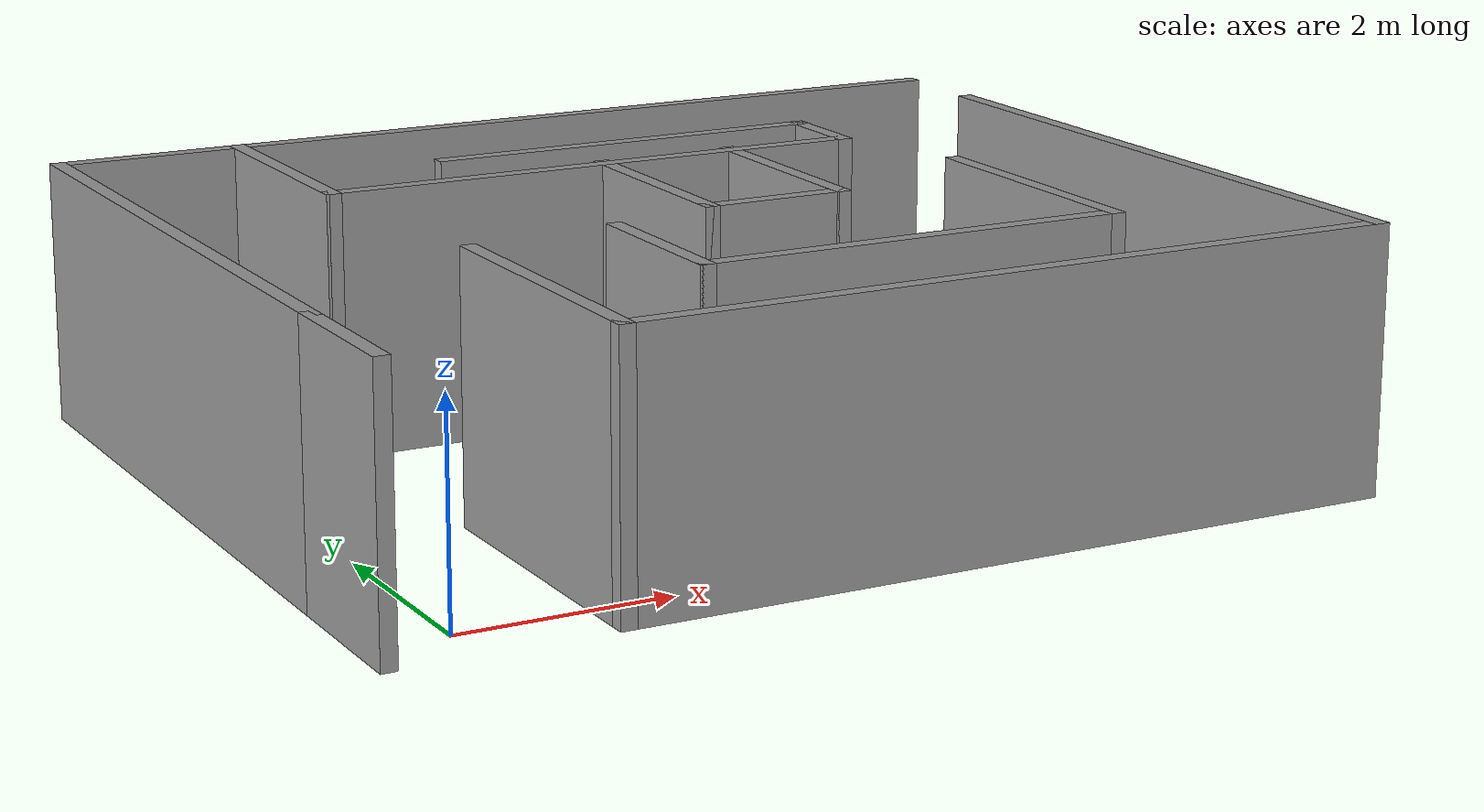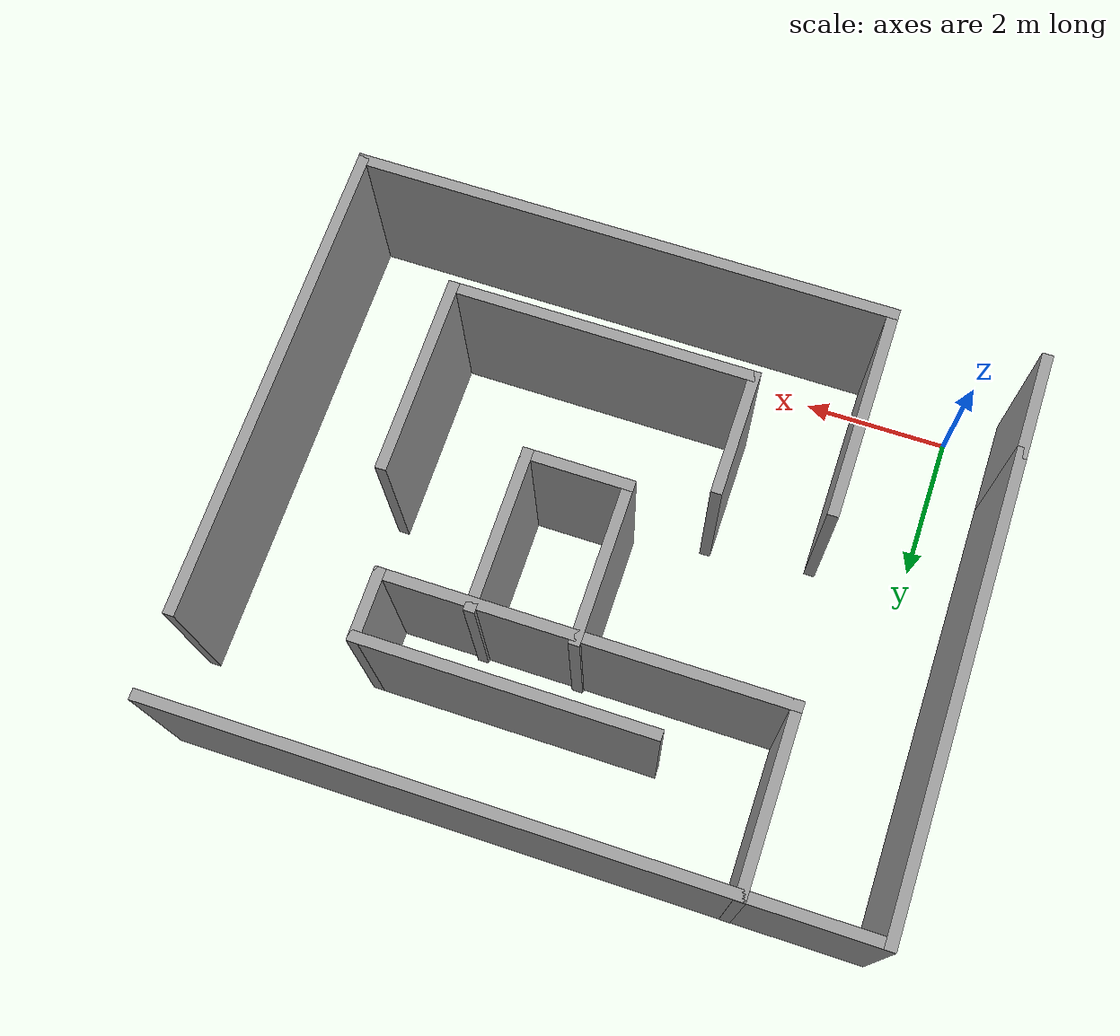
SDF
<?xml version='1.0'?>
<sdf version='1.7'>
  <model name='maze_3'>
    <pose>3.94763 3.38275 0 0 -0 0</pose>
    <link name='Wall_10'>
      <collision name='Wall_10_Collision'>
        <geometry>
          <box>
            <size>3 0.15 2.5</size>
          </box>
        </geometry>
        <pose>0 0 1.25 0 -0 0</pose>
      </collision>
      <visual name='Wall_10_Visual'>
        <pose>0 0 1.25 0 -0 0</pose>
        <geometry>
          <box>
            <size>3 0.15 2.5</size>
          </box>
        </geometry>
        <material>
          <script>
            <uri>file://media/materials/scripts/gazebo.material</uri>
            <name>Gazebo/Grey</name>
          </script>
          <ambient>1 1 1 1</ambient>
        </material>
        <meta>
          <layer>0</layer>
        </meta>
      </visual>
      <pose>-2.65653 -2.43678 0 0 -0 1.5708</pose>
    </link>
    <link name='Wall_12'>
      <collision name='Wall_12_Collision'>
        <geometry>
          <box>
            <size>2.5 0.15 2.5</size>
          </box>
        </geometry>
        <pose>0 0 1.25 0 -0 0</pose>
      </collision>
      <visual name='Wall_12_Visual'>
        <pose>0 0 1.25 0 -0 0</pose>
        <geometry>
          <box>
            <size>2.5 0.15 2.5</size>
          </box>
        </geometry>
        <material>
          <script>
            <uri>file://media/materials/scripts/gazebo.material</uri>
            <name>Gazebo/Grey</name>
          </script>
          <ambient>1 1 1 1</ambient>
        </material>
        <meta>
          <layer>0</layer>
        </meta>
      </visual>
      <pose>-2.90389 2.68678 0 0 -0 -1.5708</pose>
    </link>
    <link name='Wall_14'>
      <collision name='Wall_14_Collision'>
        <geometry>
          <box>
            <size>5.5 0.15 2.5</size>
          </box>
        </geometry>
        <pose>0 0 1.25 0 -0 0</pose>
      </collision>
      <visual name='Wall_14_Visual'>
        <pose>0 0 1.25 0 -0 0</pose>
        <geometry>
          <box>
            <size>5.5 0.15 2.5</size>
          </box>
        </geometry>
        <material>
          <script>
            <uri>file://media/materials/scripts/gazebo.material</uri>
            <name>Gazebo/Grey</name>
          </script>
          <ambient>1 1 1 1</ambient>
        </material>
        <meta>
          <layer>0</layer>
        </meta>
      </visual>
      <pose>-0.228885 1.51178 0 0 -0 0</pose>
    </link>
    <link name='Wall_15'>
      <collision name='Wall_15_Collision'>
        <geometry>
          <box>
            <size>1 0.15 2.5</size>
          </box>
        </geometry>
        <pose>0 0 1.25 0 -0 0</pose>
      </collision>
      <visual name='Wall_15_Visual'>
        <pose>0 0 1.25 0 -0 0</pose>
        <geometry>
          <box>
            <size>1 0.15 2.5</size>
          </box>
        </geometry>
        <material>
          <script>
            <uri>file://media/materials/scripts/gazebo.material</uri>
            <name>Gazebo/Grey</name>
          </script>
          <ambient>1 1 1 1</ambient>
        </material>
        <meta>
          <layer>0</layer>
        </meta>
      </visual>
      <pose>2.44611 1.93678 0 0 -0 1.5708</pose>
    </link>
    <link name='Wall_16'>
      <collision name='Wall_16_Collision'>
        <geometry>
          <box>
            <size>4 0.15 2.5</size>
          </box>
        </geometry>
        <pose>0 0 1.25 0 -0 0</pose>
      </collision>
      <visual name='Wall_16_Visual'>
        <pose>0 0 1.25 0 -0 0</pose>
        <geometry>
          <box>
            <size>4 0.15 2.5</size>
          </box>
        </geometry>
        <material>
          <script>
            <uri>file://media/materials/scripts/gazebo.material</uri>
            <name>Gazebo/Grey</name>
          </script>
          <ambient>1 1 1 1</ambient>
        </material>
        <meta>
          <layer>0</layer>
        </meta>
      </visual>
      <pose>0.521114 2.36178 0 0 -0 3.14159</pose>
    </link>
    <link name='Wall_18'>
      <collision name='Wall_18_Collision'>
        <geometry>
          <box>
            <size>1.75 0.15 2.5</size>
          </box>
        </geometry>
        <pose>0 0 1.25 0 -0 0</pose>
      </collision>
      <visual name='Wall_18_Visual'>
        <pose>0 0 1.25 0 -0 0</pose>
        <geometry>
          <box>
            <size>1.75 0.15 2.5</size>
          </box>
        </geometry>
        <material>
          <script>
            <uri>file://media/materials/scripts/gazebo.material</uri>
            <name>Gazebo/Grey</name>
          </script>
          <ambient>1 1 1 1</ambient>
        </material>
        <meta>
          <layer>0</layer>
        </meta>
      </visual>
      <pose>-1.19181 -1.64644 0 0 -0 -1.5708</pose>
    </link>
    <link name='Wall_19'>
      <collision name='Wall_19_Collision'>
        <geometry>
          <box>
            <size>4.25 0.15 2.5</size>
          </box>
        </geometry>
        <pose>0 0 1.25 0 -0 0</pose>
      </collision>
      <visual name='Wall_19_Visual'>
        <pose>0 0 1.25 0 -0 0</pose>
        <geometry>
          <box>
            <size>4.25 0.15 2.5</size>
          </box>
        </geometry>
        <material>
          <script>
            <uri>file://media/materials/scripts/gazebo.material</uri>
            <name>Gazebo/Grey</name>
          </script>
          <ambient>1 1 1 1</ambient>
        </material>
        <meta>
          <layer>0</layer>
        </meta>
      </visual>
      <pose>0.858194 -2.44644 0 0 -0 0</pose>
    </link>
    <link name='Wall_2'>
      <collision name='Wall_2_Collision'>
        <geometry>
          <box>
            <size>1.5 0.15 2.5</size>
          </box>
        </geometry>
        <pose>0 0 1.25 0 -0 0</pose>
      </collision>
      <visual name='Wall_2_Visual'>
        <pose>0 0 1.25 0 -0 0</pose>
        <geometry>
          <box>
            <size>1.5 0.15 2.5</size>
          </box>
        </geometry>
        <material>
          <script>
            <uri>file://media/materials/scripts/gazebo.material</uri>
            <name>Gazebo/Grey</name>
          </script>
          <ambient>1 1 1 1</ambient>
        </material>
        <meta>
          <layer>0</layer>
        </meta>
      </visual>
      <pose>-4.69347 -3.16812 0 0 -0 -1.5708</pose>
    </link>
    <link name='Wall_20'>
      <collision name='Wall_20_Collision'>
        <geometry>
          <box>
            <size>2.75 0.15 2.5</size>
          </box>
        </geometry>
        <pose>0 0 1.25 0 -0 0</pose>
      </collision>
      <visual name='Wall_20_Visual'>
        <pose>0 0 1.25 0 -0 0</pose>
        <geometry>
          <box>
            <size>2.75 0.15 2.5</size>
          </box>
        </geometry>
        <material>
          <script>
            <uri>file://media/materials/scripts/gazebo.material</uri>
            <name>Gazebo/Grey</name>
          </script>
          <ambient>1 1 1 1</ambient>
        </material>
        <meta>
          <layer>0</layer>
        </meta>
      </visual>
      <pose>2.9082 -1.14644 0 0 -0 1.5708</pose>
    </link>
    <link name='Wall_22'>
      <collision name='Wall_22_Collision'>
        <geometry>
          <box>
            <size>2.25 0.15 2.5</size>
          </box>
        </geometry>
        <pose>0 0 1.25 0 -0 0</pose>
      </collision>
      <visual name='Wall_22_Visual'>
        <pose>0 0 1.25 0 -0 0</pose>
        <geometry>
          <box>
            <size>2.25 0.15 2.5</size>
          </box>
        </geometry>
        <material>
          <script>
            <uri>file://media/materials/scripts/gazebo.material</uri>
            <name>Gazebo/Grey</name>
          </script>
          <ambient>1 1 1 1</ambient>
        </material>
        <meta>
          <layer>0</layer>
        </meta>
      </visual>
      <pose>-0.121755 0.511169 0 0 -0 -1.5708</pose>
    </link>
    <link name='Wall_23'>
      <collision name='Wall_23_Collision'>
        <geometry>
          <box>
            <size>1.5 0.15 2.5</size>
          </box>
        </geometry>
        <pose>0 0 1.25 0 -0 0</pose>
      </collision>
      <visual name='Wall_23_Visual'>
        <pose>0 0 1.25 0 -0 0</pose>
        <geometry>
          <box>
            <size>1.5 0.15 2.5</size>
          </box>
        </geometry>
        <material>
          <script>
            <uri>file://media/materials/scripts/gazebo.material</uri>
            <name>Gazebo/Grey</name>
          </script>
          <ambient>1 1 1 1</ambient>
        </material>
        <meta>
          <layer>0</layer>
        </meta>
      </visual>
      <pose>0.553245 -0.538831 0 0 -0 0</pose>
    </link>
    <link name='Wall_24'>
      <collision name='Wall_24_Collision'>
        <geometry>
          <box>
            <size>2.25 0.15 2.5</size>
          </box>
        </geometry>
        <pose>0 0 1.25 0 -0 0</pose>
      </collision>
      <visual name='Wall_24_Visual'>
        <pose>0 0 1.25 0 -0 0</pose>
        <geometry>
          <box>
            <size>2.25 0.15 2.5</size>
          </box>
        </geometry>
        <material>
          <script>
            <uri>file://media/materials/scripts/gazebo.material</uri>
            <name>Gazebo/Grey</name>
          </script>
          <ambient>1 1 1 1</ambient>
        </material>
        <meta>
          <layer>0</layer>
        </meta>
      </visual>
      <pose>1.22825 0.511169 0 0 -0 1.5708</pose>
    </link>
    <link name='Wall_4'>
      <collision name='Wall_4_Collision'>
        <geometry>
          <box>
            <size>6.5 0.15 2.5</size>
          </box>
        </geometry>
        <pose>0 0 1.25 0 -0 0</pose>
      </collision>
      <visual name='Wall_4_Visual'>
        <pose>0 0 1.25 0 -0 0</pose>
        <geometry>
          <box>
            <size>6.5 0.15 2.5</size>
          </box>
        </geometry>
        <material>
          <script>
            <uri>file://media/materials/scripts/gazebo.material</uri>
            <name>Gazebo/Grey</name>
          </script>
          <ambient>1 1 1 1</ambient>
        </material>
        <meta>
          <layer>0</layer>
        </meta>
      </visual>
      <pose>-4.69347 0.681879 0 0 -0 1.5708</pose>
    </link>
    <link name='Wall_5'>
      <collision name='Wall_5_Collision'>
        <geometry>
          <box>
            <size>9.5 0.15 2.5</size>
          </box>
        </geometry>
        <pose>0 0 1.25 0 -0 0</pose>
      </collision>
      <visual name='Wall_5_Visual'>
        <pose>0 0 1.25 0 -0 0</pose>
        <geometry>
          <box>
            <size>9.5 0.15 2.5</size>
          </box>
        </geometry>
        <material>
          <script>
            <uri>file://media/materials/scripts/gazebo.material</uri>
            <name>Gazebo/Grey</name>
          </script>
          <ambient>1 1 1 1</ambient>
        </material>
        <meta>
          <layer>0</layer>
        </meta>
      </visual>
      <pose>-0.01847 3.85688 0 0 -0 0</pose>
    </link>
    <link name='Wall_8'>
      <collision name='Wall_8_Collision'>
        <geometry>
          <box>
            <size>6.75 0.15 2.5</size>
          </box>
        </geometry>
        <pose>0 0 1.25 0 -0 0</pose>
      </collision>
      <visual name='Wall_8_Visual'>
        <pose>0 0 1.25 0 -0 0</pose>
        <geometry>
          <box>
            <size>6.75 0.15 2.5</size>
          </box>
        </geometry>
        <material>
          <script>
            <uri>file://media/materials/scripts/gazebo.material</uri>
            <name>Gazebo/Grey</name>
          </script>
          <ambient>1 1 1 1</ambient>
        </material>
        <meta>
          <layer>0</layer>
        </meta>
      </visual>
      <pose>4.69347 -0.561776 0 0 -0 -1.5708</pose>
    </link>
    <link name='Wall_9'>
      <collision name='Wall_9_Collision'>
        <geometry>
          <box>
            <size>7.5 0.15 2.5</size>
          </box>
        </geometry>
        <pose>0 0 1.25 0 -0 0</pose>
      </collision>
      <visual name='Wall_9_Visual'>
        <pose>0 0 1.25 0 -0 0</pose>
        <geometry>
          <box>
            <size>7.5 0.15 2.5</size>
          </box>
        </geometry>
        <material>
          <script>
            <uri>file://media/materials/scripts/gazebo.material</uri>
            <name>Gazebo/Grey</name>
          </script>
          <ambient>1 1 1 1</ambient>
        </material>
        <meta>
          <layer>0</layer>
        </meta>
      </visual>
      <pose>1.01847 -3.86178 0 0 -0 3.14159</pose>
    </link>
    <static>1</static>
  </model>
</sdf>
